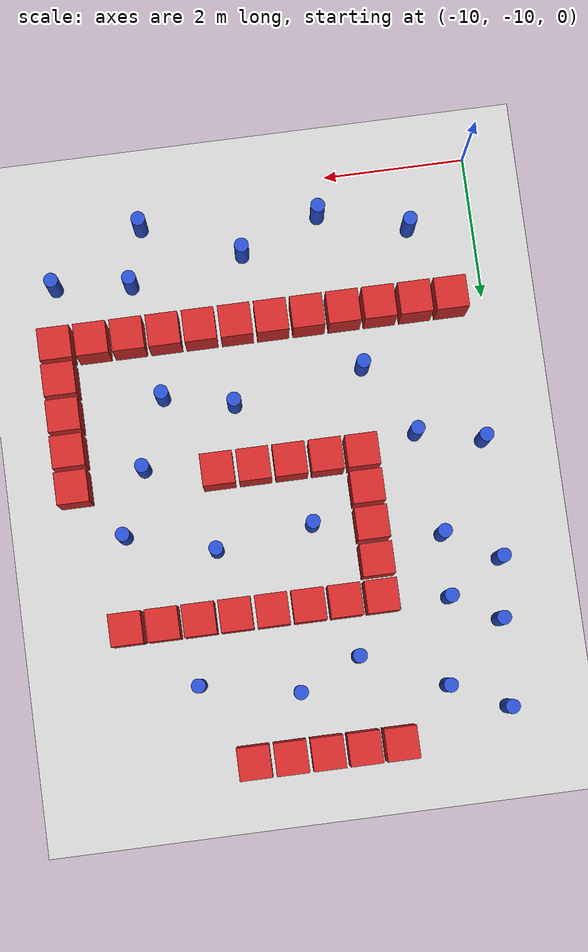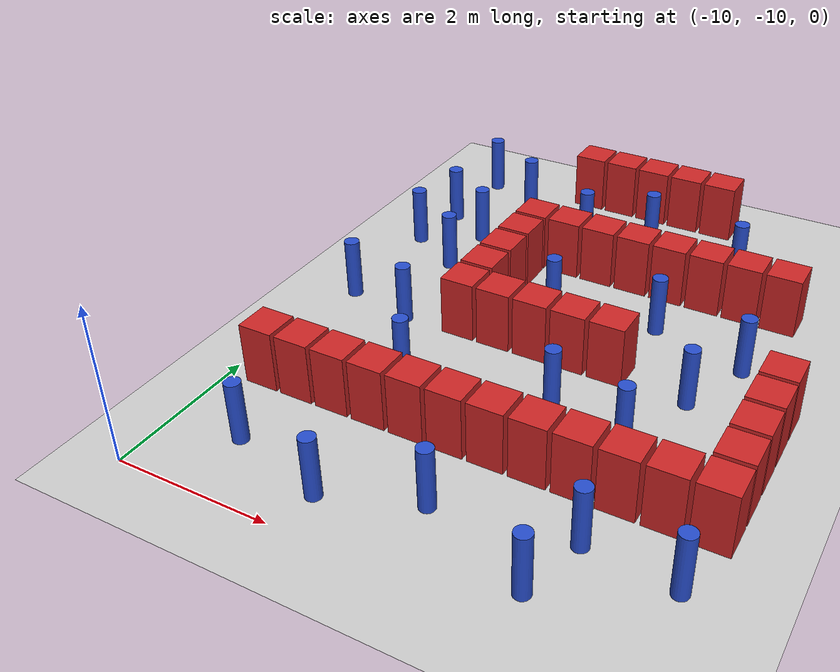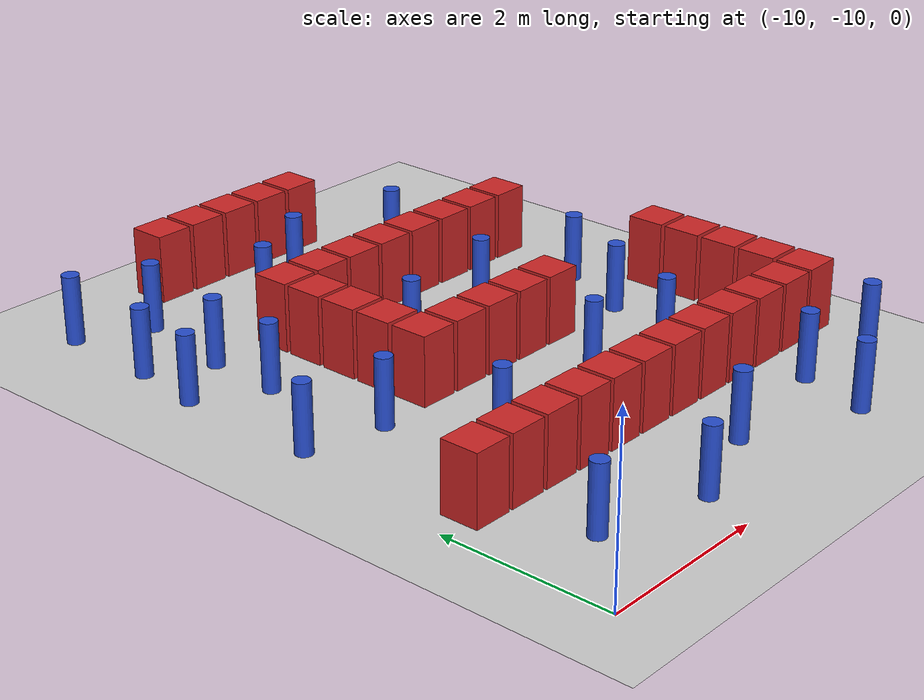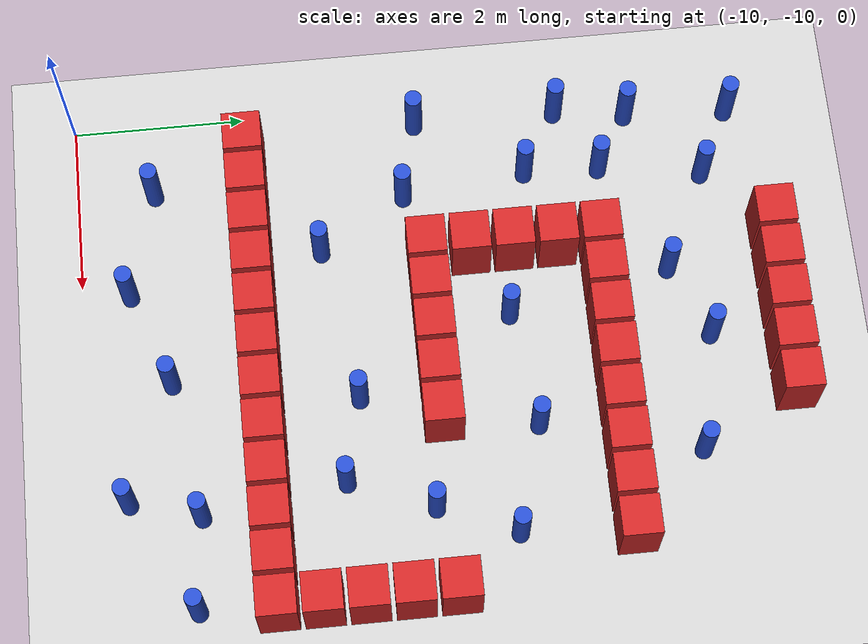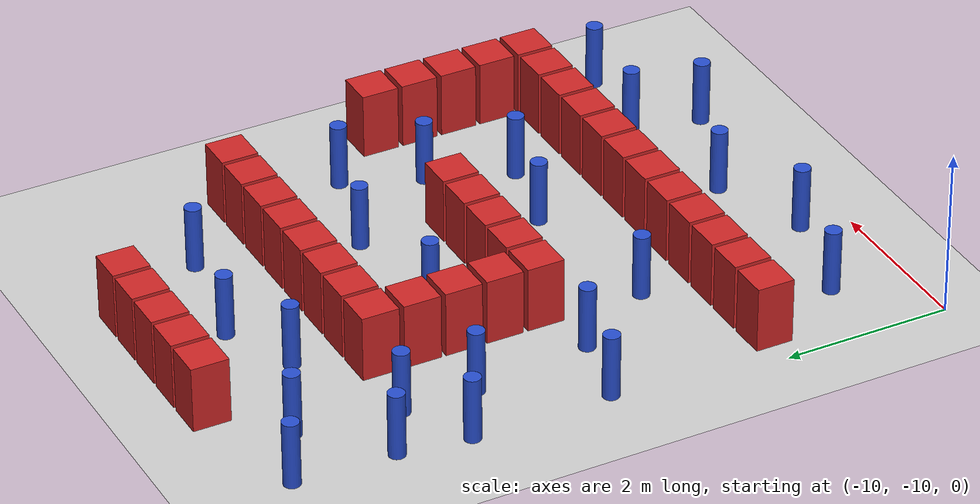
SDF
<sdf version="1.6">
 <world name="default">
  <model name="ground_plane">
   <static>1</static>
   <link name="link">
    <collision name="collision">
     <geometry><plane><normal>0 0 1</normal><size>100 100</size></plane></geometry>
     <surface><friction><ode><mu>100</mu><mu2>50</mu2></ode></friction></surface>
    </collision>
    <visual name="visual">
     <cast_shadows>0</cast_shadows>
     <geometry><plane><normal>0 0 1</normal><size>100 100</size></plane></geometry>
     <material>
      <script><uri>file://media/materials/scripts/gazebo.material</uri><name>Gazebo/Grey</name></script>
     </material>
    </visual>
   </link>
  </model>
  <model name="box_obstacle0">
   <static>0</static>
   <link name="box_obstacle">
    <pose>0 0 0.1 0 -0 0</pose>
    <inertial>
     <mass>100</mass>
     <inertia>
      <ixx>0.166667</ixx>
      <ixy>0</ixy>
      <ixz>0</ixz>
      <iyy>0.166667</iyy>
      <iyz>0</iyz>
      <izz>0.166667</izz>
     </inertia>
    </inertial>
    <collision name="collision"><geometry><box><size>0.45 0.45 0.8</size></box></geometry></collision>
    <visual name="visual">
     <geometry><box><size>0.45 0.45 0.8</size></box></geometry>
     <material>
      <script><name>Gazebo/Red</name><uri>file://media/materials/scripts/gazebo.material</uri></script>
     </material>
    </visual>
   </link>
   <pose>-9.49545 -7.98027 0.299997 -3e-06 5e-06 -4e-06</pose>
  </model>
  <model name="box_obstacle3">
   <static>0</static>
   <link name="box_obstacle">
    <pose>0 0 0.1 0 -0 0</pose>
    <inertial>
     <mass>100</mass>
     <inertia>
      <ixx>0.166667</ixx>
      <ixy>0</ixy>
      <ixz>0</ixz>
      <iyy>0.166667</iyy>
      <iyz>0</iyz>
      <izz>0.166667</izz>
     </inertia>
    </inertial>
    <collision name="collision"><geometry><box><size>0.45 0.45 0.8</size></box></geometry></collision>
    <visual name="visual">
     <geometry><box><size>0.45 0.45 0.8</size></box></geometry>
     <material>
      <script><name>Gazebo/Red</name><uri>file://media/materials/scripts/gazebo.material</uri></script>
     </material>
    </visual>
   </link>
   <pose>-8.99045 -7.98027 0.299997 -3e-06 5e-06 -4e-06</pose>
  </model>
  <model name="box_obstacle6">
   <static>0</static>
   <link name="box_obstacle">
    <pose>0 0 0.1 0 -0 0</pose>
    <inertial>
     <mass>100</mass>
     <inertia>
      <ixx>0.166667</ixx>
      <ixy>0</ixy>
      <ixz>0</ixz>
      <iyy>0.166667</iyy>
      <iyz>0</iyz>
      <izz>0.166667</izz>
     </inertia>
    </inertial>
    <collision name="collision"><geometry><box><size>0.45 0.45 0.8</size></box></geometry></collision>
    <visual name="visual">
     <geometry><box><size>0.45 0.45 0.8</size></box></geometry>
     <material>
      <script><name>Gazebo/Red</name><uri>file://media/materials/scripts/gazebo.material</uri></script>
     </material>
    </visual>
   </link>
   <pose>-8.48545 -7.98027 0.299997 -3e-06 5e-06 -4e-06</pose>
  </model>
  <model name="box_obstacle9">
   <static>0</static>
   <link name="box_obstacle">
    <pose>0 0 0.1 0 -0 0</pose>
    <inertial>
     <mass>100</mass>
     <inertia>
      <ixx>0.166667</ixx>
      <ixy>0</ixy>
      <ixz>0</ixz>
      <iyy>0.166667</iyy>
      <iyz>0</iyz>
      <izz>0.166667</izz>
     </inertia>
    </inertial>
    <collision name="collision"><geometry><box><size>0.45 0.45 0.8</size></box></geometry></collision>
    <visual name="visual">
     <geometry><box><size>0.45 0.45 0.8</size></box></geometry>
     <material>
      <script><name>Gazebo/Red</name><uri>file://media/materials/scripts/gazebo.material</uri></script>
     </material>
    </visual>
   </link>
   <pose>-7.98045 -7.98027 0.299997 -3e-06 5e-06 -4e-06</pose>
  </model>
  <model name="box_obstacle10">
   <static>0</static>
   <link name="box_obstacle">
    <pose>0 0 0.1 0 -0 0</pose>
    <inertial>
     <mass>100</mass>
     <inertia>
      <ixx>0.166667</ixx>
      <ixy>0</ixy>
      <ixz>0</ixz>
      <iyy>0.166667</iyy>
      <iyz>0</iyz>
      <izz>0.166667</izz>
     </inertia>
    </inertial>
    <collision name="collision"><geometry><box><size>0.45 0.45 0.8</size></box></geometry></collision>
    <visual name="visual">
     <geometry><box><size>0.45 0.45 0.8</size></box></geometry>
     <material>
      <script><name>Gazebo/Red</name><uri>file://media/materials/scripts/gazebo.material</uri></script>
     </material>
    </visual>
   </link>
   <pose>-7.98045 -5.96027 0.299997 -3e-06 5e-06 -4e-06</pose>
  </model>
  <model name="box_obstacle11">
   <static>0</static>
   <link name="box_obstacle">
    <pose>0 0 0.1 0 -0 0</pose>
    <inertial>
     <mass>100</mass>
     <inertia>
      <ixx>0.166667</ixx>
      <ixy>0</ixy>
      <ixz>0</ixz>
      <iyy>0.166667</iyy>
      <iyz>0</iyz>
      <izz>0.166667</izz>
     </inertia>
    </inertial>
    <collision name="collision"><geometry><box><size>0.45 0.45 0.8</size></box></geometry></collision>
    <visual name="visual">
     <geometry><box><size>0.45 0.45 0.8</size></box></geometry>
     <material>
      <script><name>Gazebo/Red</name><uri>file://media/materials/scripts/gazebo.material</uri></script>
     </material>
    </visual>
   </link>
   <pose>-7.98045 -5.45527 0.299997 -3e-06 5e-06 -4e-06</pose>
  </model>
  <model name="box_obstacle12">
   <static>0</static>
   <link name="box_obstacle">
    <pose>0 0 0.1 0 -0 0</pose>
    <inertial>
     <mass>100</mass>
     <inertia>
      <ixx>0.166667</ixx>
      <ixy>0</ixy>
      <ixz>0</ixz>
      <iyy>0.166667</iyy>
      <iyz>0</iyz>
      <izz>0.166667</izz>
     </inertia>
    </inertial>
    <collision name="collision"><geometry><box><size>0.45 0.45 0.8</size></box></geometry></collision>
    <visual name="visual">
     <geometry><box><size>0.45 0.45 0.8</size></box></geometry>
     <material>
      <script><name>Gazebo/Red</name><uri>file://media/materials/scripts/gazebo.material</uri></script>
     </material>
    </visual>
   </link>
   <pose>-7.98045 -4.95027 0.299997 -3e-06 5e-06 -4e-06</pose>
  </model>
  <model name="box_obstacle13">
   <static>0</static>
   <link name="box_obstacle">
    <pose>0 0 0.1 0 -0 0</pose>
    <inertial>
     <mass>100</mass>
     <inertia>
      <ixx>0.166667</ixx>
      <ixy>0</ixy>
      <ixz>0</ixz>
      <iyy>0.166667</iyy>
      <iyz>0</iyz>
      <izz>0.166667</izz>
     </inertia>
    </inertial>
    <collision name="collision"><geometry><box><size>0.45 0.45 0.8</size></box></geometry></collision>
    <visual name="visual">
     <geometry><box><size>0.45 0.45 0.8</size></box></geometry>
     <material>
      <script><name>Gazebo/Red</name><uri>file://media/materials/scripts/gazebo.material</uri></script>
     </material>
    </visual>
   </link>
   <pose>-7.98045 -4.44527 0.299997 -3e-06 5e-06 -4e-06</pose>
  </model>
  <model name="box_obstacle14">
   <static>0</static>
   <link name="box_obstacle">
    <pose>0 0 0.1 0 -0 0</pose>
    <inertial>
     <mass>100</mass>
     <inertia>
      <ixx>0.166667</ixx>
      <ixy>0</ixy>
      <ixz>0</ixz>
      <iyy>0.166667</iyy>
      <iyz>0</iyz>
      <izz>0.166667</izz>
     </inertia>
    </inertial>
    <collision name="collision"><geometry><box><size>0.45 0.45 0.8</size></box></geometry></collision>
    <visual name="visual">
     <geometry><box><size>0.45 0.45 0.8</size></box></geometry>
     <material>
      <script><name>Gazebo/Red</name><uri>file://media/materials/scripts/gazebo.material</uri></script>
     </material>
    </visual>
   </link>
   <pose>-7.98045 -3.94027 0.299997 -3e-06 5e-06 -4e-06</pose>
  </model>
  <model name="box_obstacle15">
   <static>0</static>
   <link name="box_obstacle">
    <pose>0 0 0.1 0 -0 0</pose>
    <inertial>
     <mass>100</mass>
     <inertia>
      <ixx>0.166667</ixx>
      <ixy>0</ixy>
      <ixz>0</ixz>
      <iyy>0.166667</iyy>
      <iyz>0</iyz>
      <izz>0.166667</izz>
     </inertia>
    </inertial>
    <collision name="collision"><geometry><box><size>0.45 0.45 0.8</size></box></geometry></collision>
    <visual name="visual">
     <geometry><box><size>0.45 0.45 0.8</size></box></geometry>
     <material>
      <script><name>Gazebo/Red</name><uri>file://media/materials/scripts/gazebo.material</uri></script>
     </material>
    </visual>
   </link>
   <pose>-7.98045 -1.92027 0.299997 -3e-06 5e-06 -4e-06</pose>
  </model>
  <model name="box_obstacle24">
   <static>0</static>
   <link name="box_obstacle">
    <pose>0 0 0.1 0 -0 0</pose>
    <inertial>
     <mass>100</mass>
     <inertia>
      <ixx>0.166667</ixx>
      <ixy>0</ixy>
      <ixz>0</ixz>
      <iyy>0.166667</iyy>
      <iyz>0</iyz>
      <izz>0.166667</izz>
     </inertia>
    </inertial>
    <collision name="collision"><geometry><box><size>0.45 0.45 0.8</size></box></geometry></collision>
    <visual name="visual">
     <geometry><box><size>0.45 0.45 0.8</size></box></geometry>
     <material>
      <script><name>Gazebo/Red</name><uri>file://media/materials/scripts/gazebo.material</uri></script>
     </material>
    </visual>
   </link>
   <pose>-7.47545 -7.98027 0.299997 -3e-06 5e-06 -4e-06</pose>
  </model>
  <model name="box_obstacle25">
   <static>0</static>
   <link name="box_obstacle">
    <pose>0 0 0.1 0 -0 0</pose>
    <inertial>
     <mass>100</mass>
     <inertia>
      <ixx>0.166667</ixx>
      <ixy>0</ixy>
      <ixz>0</ixz>
      <iyy>0.166667</iyy>
      <iyz>0</iyz>
      <izz>0.166667</izz>
     </inertia>
    </inertial>
    <collision name="collision"><geometry><box><size>0.45 0.45 0.8</size></box></geometry></collision>
    <visual name="visual">
     <geometry><box><size>0.45 0.45 0.8</size></box></geometry>
     <material>
      <script><name>Gazebo/Red</name><uri>file://media/materials/scripts/gazebo.material</uri></script>
     </material>
    </visual>
   </link>
   <pose>-7.47545 -5.96027 0.299997 -3e-06 5e-06 -4e-06</pose>
  </model>
  <model name="box_obstacle26">
   <static>0</static>
   <link name="box_obstacle">
    <pose>0 0 0.1 0 -0 0</pose>
    <inertial>
     <mass>100</mass>
     <inertia>
      <ixx>0.166667</ixx>
      <ixy>0</ixy>
      <ixz>0</ixz>
      <iyy>0.166667</iyy>
      <iyz>0</iyz>
      <izz>0.166667</izz>
     </inertia>
    </inertial>
    <collision name="collision"><geometry><box><size>0.45 0.45 0.8</size></box></geometry></collision>
    <visual name="visual">
     <geometry><box><size>0.45 0.45 0.8</size></box></geometry>
     <material>
      <script><name>Gazebo/Red</name><uri>file://media/materials/scripts/gazebo.material</uri></script>
     </material>
    </visual>
   </link>
   <pose>-7.47545 -3.94027 0.299997 -3e-06 5e-06 -4e-06</pose>
  </model>
  <model name="box_obstacle27">
   <static>0</static>
   <link name="box_obstacle">
    <pose>0 0 0.1 0 -0 0</pose>
    <inertial>
     <mass>100</mass>
     <inertia>
      <ixx>0.166667</ixx>
      <ixy>0</ixy>
      <ixz>0</ixz>
      <iyy>0.166667</iyy>
      <iyz>0</iyz>
      <izz>0.166667</izz>
     </inertia>
    </inertial>
    <collision name="collision"><geometry><box><size>0.45 0.45 0.8</size></box></geometry></collision>
    <visual name="visual">
     <geometry><box><size>0.45 0.45 0.8</size></box></geometry>
     <material>
      <script><name>Gazebo/Red</name><uri>file://media/materials/scripts/gazebo.material</uri></script>
     </material>
    </visual>
   </link>
   <pose>-7.47545 -1.92027 0.299997 -3e-06 5e-06 -4e-06</pose>
  </model>
  <model name="box_obstacle31">
   <static>0</static>
   <link name="box_obstacle">
    <pose>0 0 0.1 0 -0 0</pose>
    <inertial>
     <mass>100</mass>
     <inertia>
      <ixx>0.166667</ixx>
      <ixy>0</ixy>
      <ixz>0</ixz>
      <iyy>0.166667</iyy>
      <iyz>0</iyz>
      <izz>0.166667</izz>
     </inertia>
    </inertial>
    <collision name="collision"><geometry><box><size>0.45 0.45 0.8</size></box></geometry></collision>
    <visual name="visual">
     <geometry><box><size>0.45 0.45 0.8</size></box></geometry>
     <material>
      <script><name>Gazebo/Red</name><uri>file://media/materials/scripts/gazebo.material</uri></script>
     </material>
    </visual>
   </link>
   <pose>-6.97045 -7.98027 0.299997 -3e-06 5e-06 -4e-06</pose>
  </model>
  <model name="box_obstacle32">
   <static>0</static>
   <link name="box_obstacle">
    <pose>0 0 0.1 0 -0 0</pose>
    <inertial>
     <mass>100</mass>
     <inertia>
      <ixx>0.166667</ixx>
      <ixy>0</ixy>
      <ixz>0</ixz>
      <iyy>0.166667</iyy>
      <iyz>0</iyz>
      <izz>0.166667</izz>
     </inertia>
    </inertial>
    <collision name="collision"><geometry><box><size>0.45 0.45 0.8</size></box></geometry></collision>
    <visual name="visual">
     <geometry><box><size>0.45 0.45 0.8</size></box></geometry>
     <material>
      <script><name>Gazebo/Red</name><uri>file://media/materials/scripts/gazebo.material</uri></script>
     </material>
    </visual>
   </link>
   <pose>-6.97045 -5.96027 0.299997 -3e-06 5e-06 -4e-06</pose>
  </model>
  <model name="box_obstacle33">
   <static>0</static>
   <link name="box_obstacle">
    <pose>0 0 0.1 0 -0 0</pose>
    <inertial>
     <mass>100</mass>
     <inertia>
      <ixx>0.166667</ixx>
      <ixy>0</ixy>
      <ixz>0</ixz>
      <iyy>0.166667</iyy>
      <iyz>0</iyz>
      <izz>0.166667</izz>
     </inertia>
    </inertial>
    <collision name="collision"><geometry><box><size>0.45 0.45 0.8</size></box></geometry></collision>
    <visual name="visual">
     <geometry><box><size>0.45 0.45 0.8</size></box></geometry>
     <material>
      <script><name>Gazebo/Red</name><uri>file://media/materials/scripts/gazebo.material</uri></script>
     </material>
    </visual>
   </link>
   <pose>-6.97045 -3.94027 0.299997 -3e-06 5e-06 -4e-06</pose>
  </model>
  <model name="box_obstacle34">
   <static>0</static>
   <link name="box_obstacle">
    <pose>0 0 0.1 0 -0 0</pose>
    <inertial>
     <mass>100</mass>
     <inertia>
      <ixx>0.166667</ixx>
      <ixy>0</ixy>
      <ixz>0</ixz>
      <iyy>0.166667</iyy>
      <iyz>0</iyz>
      <izz>0.166667</izz>
     </inertia>
    </inertial>
    <collision name="collision"><geometry><box><size>0.45 0.45 0.8</size></box></geometry></collision>
    <visual name="visual">
     <geometry><box><size>0.45 0.45 0.8</size></box></geometry>
     <material>
      <script><name>Gazebo/Red</name><uri>file://media/materials/scripts/gazebo.material</uri></script>
     </material>
    </visual>
   </link>
   <pose>-6.97045 -1.92027 0.299997 -3e-06 5e-06 -4e-06</pose>
  </model>
  <model name="box_obstacle38">
   <static>0</static>
   <link name="box_obstacle">
    <pose>0 0 0.1 0 -0 0</pose>
    <inertial>
     <mass>100</mass>
     <inertia>
      <ixx>0.166667</ixx>
      <ixy>0</ixy>
      <ixz>0</ixz>
      <iyy>0.166667</iyy>
      <iyz>0</iyz>
      <izz>0.166667</izz>
     </inertia>
    </inertial>
    <collision name="collision"><geometry><box><size>0.45 0.45 0.8</size></box></geometry></collision>
    <visual name="visual">
     <geometry><box><size>0.45 0.45 0.8</size></box></geometry>
     <material>
      <script><name>Gazebo/Red</name><uri>file://media/materials/scripts/gazebo.material</uri></script>
     </material>
    </visual>
   </link>
   <pose>-6.46545 -7.98027 0.299997 -3e-06 5e-06 -4e-06</pose>
  </model>
  <model name="box_obstacle39">
   <static>0</static>
   <link name="box_obstacle">
    <pose>0 0 0.1 0 -0 0</pose>
    <inertial>
     <mass>100</mass>
     <inertia>
      <ixx>0.166667</ixx>
      <ixy>0</ixy>
      <ixz>0</ixz>
      <iyy>0.166667</iyy>
      <iyz>0</iyz>
      <izz>0.166667</izz>
     </inertia>
    </inertial>
    <collision name="collision"><geometry><box><size>0.45 0.45 0.8</size></box></geometry></collision>
    <visual name="visual">
     <geometry><box><size>0.45 0.45 0.8</size></box></geometry>
     <material>
      <script><name>Gazebo/Red</name><uri>file://media/materials/scripts/gazebo.material</uri></script>
     </material>
    </visual>
   </link>
   <pose>-6.46545 -5.96027 0.299997 -3e-06 5e-06 -4e-06</pose>
  </model>
  <model name="box_obstacle40">
   <static>0</static>
   <link name="box_obstacle">
    <pose>0 0 0.1 0 -0 0</pose>
    <inertial>
     <mass>100</mass>
     <inertia>
      <ixx>0.166667</ixx>
      <ixy>0</ixy>
      <ixz>0</ixz>
      <iyy>0.166667</iyy>
      <iyz>0</iyz>
      <izz>0.166667</izz>
     </inertia>
    </inertial>
    <collision name="collision"><geometry><box><size>0.45 0.45 0.8</size></box></geometry></collision>
    <visual name="visual">
     <geometry><box><size>0.45 0.45 0.8</size></box></geometry>
     <material>
      <script><name>Gazebo/Red</name><uri>file://media/materials/scripts/gazebo.material</uri></script>
     </material>
    </visual>
   </link>
   <pose>-6.46545 -3.94027 0.299997 -3e-06 5e-06 -4e-06</pose>
  </model>
  <model name="box_obstacle41">
   <static>0</static>
   <link name="box_obstacle">
    <pose>0 0 0.1 0 -0 0</pose>
    <inertial>
     <mass>100</mass>
     <inertia>
      <ixx>0.166667</ixx>
      <ixy>0</ixy>
      <ixz>0</ixz>
      <iyy>0.166667</iyy>
      <iyz>0</iyz>
      <izz>0.166667</izz>
     </inertia>
    </inertial>
    <collision name="collision"><geometry><box><size>0.45 0.45 0.8</size></box></geometry></collision>
    <visual name="visual">
     <geometry><box><size>0.45 0.45 0.8</size></box></geometry>
     <material>
      <script><name>Gazebo/Red</name><uri>file://media/materials/scripts/gazebo.material</uri></script>
     </material>
    </visual>
   </link>
   <pose>-6.46545 -1.92027 0.299997 -3e-06 5e-06 -4e-06</pose>
  </model>
  <model name="box_obstacle45">
   <static>0</static>
   <link name="box_obstacle">
    <pose>0 0 0.1 0 -0 0</pose>
    <inertial>
     <mass>100</mass>
     <inertia>
      <ixx>0.166667</ixx>
      <ixy>0</ixy>
      <ixz>0</ixz>
      <iyy>0.166667</iyy>
      <iyz>0</iyz>
      <izz>0.166667</izz>
     </inertia>
    </inertial>
    <collision name="collision"><geometry><box><size>0.45 0.45 0.8</size></box></geometry></collision>
    <visual name="visual">
     <geometry><box><size>0.45 0.45 0.8</size></box></geometry>
     <material>
      <script><name>Gazebo/Red</name><uri>file://media/materials/scripts/gazebo.material</uri></script>
     </material>
    </visual>
   </link>
   <pose>-5.96045 -7.98027 0.299997 -3e-06 5e-06 -4e-06</pose>
  </model>
  <model name="box_obstacle46">
   <static>0</static>
   <link name="box_obstacle">
    <pose>0 0 0.1 0 -0 0</pose>
    <inertial>
     <mass>100</mass>
     <inertia>
      <ixx>0.166667</ixx>
      <ixy>0</ixy>
      <ixz>0</ixz>
      <iyy>0.166667</iyy>
      <iyz>0</iyz>
      <izz>0.166667</izz>
     </inertia>
    </inertial>
    <collision name="collision"><geometry><box><size>0.45 0.45 0.8</size></box></geometry></collision>
    <visual name="visual">
     <geometry><box><size>0.45 0.45 0.8</size></box></geometry>
     <material>
      <script><name>Gazebo/Red</name><uri>file://media/materials/scripts/gazebo.material</uri></script>
     </material>
    </visual>
   </link>
   <pose>-5.96045 -5.96027 0.299997 -3e-06 5e-06 -4e-06</pose>
  </model>
  <model name="box_obstacle47">
   <static>0</static>
   <link name="box_obstacle">
    <pose>0 0 0.1 0 -0 0</pose>
    <inertial>
     <mass>100</mass>
     <inertia>
      <ixx>0.166667</ixx>
      <ixy>0</ixy>
      <ixz>0</ixz>
      <iyy>0.166667</iyy>
      <iyz>0</iyz>
      <izz>0.166667</izz>
     </inertia>
    </inertial>
    <collision name="collision"><geometry><box><size>0.45 0.45 0.8</size></box></geometry></collision>
    <visual name="visual">
     <geometry><box><size>0.45 0.45 0.8</size></box></geometry>
     <material>
      <script><name>Gazebo/Red</name><uri>file://media/materials/scripts/gazebo.material</uri></script>
     </material>
    </visual>
   </link>
   <pose>-5.96045 -3.94027 0.299997 -3e-06 5e-06 -4e-06</pose>
  </model>
  <model name="box_obstacle48">
   <static>0</static>
   <link name="box_obstacle">
    <pose>0 0 0.1 0 -0 0</pose>
    <inertial>
     <mass>100</mass>
     <inertia>
      <ixx>0.166667</ixx>
      <ixy>0</ixy>
      <ixz>0</ixz>
      <iyy>0.166667</iyy>
      <iyz>0</iyz>
      <izz>0.166667</izz>
     </inertia>
    </inertial>
    <collision name="collision"><geometry><box><size>0.45 0.45 0.8</size></box></geometry></collision>
    <visual name="visual">
     <geometry><box><size>0.45 0.45 0.8</size></box></geometry>
     <material>
      <script><name>Gazebo/Red</name><uri>file://media/materials/scripts/gazebo.material</uri></script>
     </material>
    </visual>
   </link>
   <pose>-5.96045 -1.92027 0.299997 -3e-06 5e-06 -4e-06</pose>
  </model>
  <model name="box_obstacle66">
   <static>0</static>
   <link name="box_obstacle">
    <pose>0 0 0.1 0 -0 0</pose>
    <inertial>
     <mass>100</mass>
     <inertia>
      <ixx>0.166667</ixx>
      <ixy>0</ixy>
      <ixz>0</ixz>
      <iyy>0.166667</iyy>
      <iyz>0</iyz>
      <izz>0.166667</izz>
     </inertia>
    </inertial>
    <collision name="collision"><geometry><box><size>0.45 0.45 0.8</size></box></geometry></collision>
    <visual name="visual">
     <geometry><box><size>0.45 0.45 0.8</size></box></geometry>
     <material>
      <script><name>Gazebo/Red</name><uri>file://media/materials/scripts/gazebo.material</uri></script>
     </material>
    </visual>
   </link>
   <pose>-5.45545 -7.98027 0.299997 -3e-06 5e-06 -4e-06</pose>
  </model>
  <model name="box_obstacle67">
   <static>0</static>
   <link name="box_obstacle">
    <pose>0 0 0.1 0 -0 0</pose>
    <inertial>
     <mass>100</mass>
     <inertia>
      <ixx>0.166667</ixx>
      <ixy>0</ixy>
      <ixz>0</ixz>
      <iyy>0.166667</iyy>
      <iyz>0</iyz>
      <izz>0.166667</izz>
     </inertia>
    </inertial>
    <collision name="collision"><geometry><box><size>0.45 0.45 0.8</size></box></geometry></collision>
    <visual name="visual">
     <geometry><box><size>0.45 0.45 0.8</size></box></geometry>
     <material>
      <script><name>Gazebo/Red</name><uri>file://media/materials/scripts/gazebo.material</uri></script>
     </material>
    </visual>
   </link>
   <pose>-5.45545 -3.94027 0.299997 -3e-06 5e-06 -4e-06</pose>
  </model>
  <model name="box_obstacle70">
   <static>0</static>
   <link name="box_obstacle">
    <pose>0 0 0.1 0 -0 0</pose>
    <inertial>
     <mass>100</mass>
     <inertia>
      <ixx>0.166667</ixx>
      <ixy>0</ixy>
      <ixz>0</ixz>
      <iyy>0.166667</iyy>
      <iyz>0</iyz>
      <izz>0.166667</izz>
     </inertia>
    </inertial>
    <collision name="collision"><geometry><box><size>0.45 0.45 0.8</size></box></geometry></collision>
    <visual name="visual">
     <geometry><box><size>0.45 0.45 0.8</size></box></geometry>
     <material>
      <script><name>Gazebo/Red</name><uri>file://media/materials/scripts/gazebo.material</uri></script>
     </material>
    </visual>
   </link>
   <pose>-4.95045 -7.98027 0.299997 -3e-06 5e-06 -4e-06</pose>
  </model>
  <model name="box_obstacle71">
   <static>0</static>
   <link name="box_obstacle">
    <pose>0 0 0.1 0 -0 0</pose>
    <inertial>
     <mass>100</mass>
     <inertia>
      <ixx>0.166667</ixx>
      <ixy>0</ixy>
      <ixz>0</ixz>
      <iyy>0.166667</iyy>
      <iyz>0</iyz>
      <izz>0.166667</izz>
     </inertia>
    </inertial>
    <collision name="collision"><geometry><box><size>0.45 0.45 0.8</size></box></geometry></collision>
    <visual name="visual">
     <geometry><box><size>0.45 0.45 0.8</size></box></geometry>
     <material>
      <script><name>Gazebo/Red</name><uri>file://media/materials/scripts/gazebo.material</uri></script>
     </material>
    </visual>
   </link>
   <pose>-4.95045 -3.94027 0.299997 -3e-06 5e-06 -4e-06</pose>
  </model>
  <model name="box_obstacle74">
   <static>0</static>
   <link name="box_obstacle">
    <pose>0 0 0.1 0 -0 0</pose>
    <inertial>
     <mass>100</mass>
     <inertia>
      <ixx>0.166667</ixx>
      <ixy>0</ixy>
      <ixz>0</ixz>
      <iyy>0.166667</iyy>
      <iyz>0</iyz>
      <izz>0.166667</izz>
     </inertia>
    </inertial>
    <collision name="collision"><geometry><box><size>0.45 0.45 0.8</size></box></geometry></collision>
    <visual name="visual">
     <geometry><box><size>0.45 0.45 0.8</size></box></geometry>
     <material>
      <script><name>Gazebo/Red</name><uri>file://media/materials/scripts/gazebo.material</uri></script>
     </material>
    </visual>
   </link>
   <pose>-4.44545 -7.98027 0.299997 -3e-06 5e-06 -4e-06</pose>
  </model>
  <model name="box_obstacle75">
   <static>0</static>
   <link name="box_obstacle">
    <pose>0 0 0.1 0 -0 0</pose>
    <inertial>
     <mass>100</mass>
     <inertia>
      <ixx>0.166667</ixx>
      <ixy>0</ixy>
      <ixz>0</ixz>
      <iyy>0.166667</iyy>
      <iyz>0</iyz>
      <izz>0.166667</izz>
     </inertia>
    </inertial>
    <collision name="collision"><geometry><box><size>0.45 0.45 0.8</size></box></geometry></collision>
    <visual name="visual">
     <geometry><box><size>0.45 0.45 0.8</size></box></geometry>
     <material>
      <script><name>Gazebo/Red</name><uri>file://media/materials/scripts/gazebo.material</uri></script>
     </material>
    </visual>
   </link>
   <pose>-4.44545 -3.94027 0.299997 -3e-06 5e-06 -4e-06</pose>
  </model>
  <model name="box_obstacle78">
   <static>0</static>
   <link name="box_obstacle">
    <pose>0 0 0.1 0 -0 0</pose>
    <inertial>
     <mass>100</mass>
     <inertia>
      <ixx>0.166667</ixx>
      <ixy>0</ixy>
      <ixz>0</ixz>
      <iyy>0.166667</iyy>
      <iyz>0</iyz>
      <izz>0.166667</izz>
     </inertia>
    </inertial>
    <collision name="collision"><geometry><box><size>0.45 0.45 0.8</size></box></geometry></collision>
    <visual name="visual">
     <geometry><box><size>0.45 0.45 0.8</size></box></geometry>
     <material>
      <script><name>Gazebo/Red</name><uri>file://media/materials/scripts/gazebo.material</uri></script>
     </material>
    </visual>
   </link>
   <pose>-3.94045 -7.98027 0.299997 -3e-06 5e-06 -4e-06</pose>
  </model>
  <model name="box_obstacle79">
   <static>0</static>
   <link name="box_obstacle">
    <pose>0 0 0.1 0 -0 0</pose>
    <inertial>
     <mass>100</mass>
     <inertia>
      <ixx>0.166667</ixx>
      <ixy>0</ixy>
      <ixz>0</ixz>
      <iyy>0.166667</iyy>
      <iyz>0</iyz>
      <izz>0.166667</izz>
     </inertia>
    </inertial>
    <collision name="collision"><geometry><box><size>0.45 0.45 0.8</size></box></geometry></collision>
    <visual name="visual">
     <geometry><box><size>0.45 0.45 0.8</size></box></geometry>
     <material>
      <script><name>Gazebo/Red</name><uri>file://media/materials/scripts/gazebo.material</uri></script>
     </material>
    </visual>
   </link>
   <pose>-3.94045 -7.47527 0.299997 -3e-06 5e-06 -4e-06</pose>
  </model>
  <model name="box_obstacle80">
   <static>0</static>
   <link name="box_obstacle">
    <pose>0 0 0.1 0 -0 0</pose>
    <inertial>
     <mass>100</mass>
     <inertia>
      <ixx>0.166667</ixx>
      <ixy>0</ixy>
      <ixz>0</ixz>
      <iyy>0.166667</iyy>
      <iyz>0</iyz>
      <izz>0.166667</izz>
     </inertia>
    </inertial>
    <collision name="collision"><geometry><box><size>0.45 0.45 0.8</size></box></geometry></collision>
    <visual name="visual">
     <geometry><box><size>0.45 0.45 0.8</size></box></geometry>
     <material>
      <script><name>Gazebo/Red</name><uri>file://media/materials/scripts/gazebo.material</uri></script>
     </material>
    </visual>
   </link>
   <pose>-3.94045 -6.97027 0.299997 -3e-06 5e-06 -4e-06</pose>
  </model>
  <model name="box_obstacle81">
   <static>0</static>
   <link name="box_obstacle">
    <pose>0 0 0.1 0 -0 0</pose>
    <inertial>
     <mass>100</mass>
     <inertia>
      <ixx>0.166667</ixx>
      <ixy>0</ixy>
      <ixz>0</ixz>
      <iyy>0.166667</iyy>
      <iyz>0</iyz>
      <izz>0.166667</izz>
     </inertia>
    </inertial>
    <collision name="collision"><geometry><box><size>0.45 0.45 0.8</size></box></geometry></collision>
    <visual name="visual">
     <geometry><box><size>0.45 0.45 0.8</size></box></geometry>
     <material>
      <script><name>Gazebo/Red</name><uri>file://media/materials/scripts/gazebo.material</uri></script>
     </material>
    </visual>
   </link>
   <pose>-3.94045 -6.46527 0.299997 -3e-06 5e-06 -4e-06</pose>
  </model>
  <model name="box_obstacle82">
   <static>0</static>
   <link name="box_obstacle">
    <pose>0 0 0.1 0 -0 0</pose>
    <inertial>
     <mass>100</mass>
     <inertia>
      <ixx>0.166667</ixx>
      <ixy>0</ixy>
      <ixz>0</ixz>
      <iyy>0.166667</iyy>
      <iyz>0</iyz>
      <izz>0.166667</izz>
     </inertia>
    </inertial>
    <collision name="collision"><geometry><box><size>0.45 0.45 0.8</size></box></geometry></collision>
    <visual name="visual">
     <geometry><box><size>0.45 0.45 0.8</size></box></geometry>
     <material>
      <script><name>Gazebo/Red</name><uri>file://media/materials/scripts/gazebo.material</uri></script>
     </material>
    </visual>
   </link>
   <pose>-3.94045 -5.96027 0.299997 -3e-06 5e-06 -4e-06</pose>
  </model>
  <model name="cylinder_obstacle5">
   <static>0</static>
   <link name="link">
    <pose>0 0 1 0 -0 0</pose>
    <inertial>
     <mass>100</mass>
     <inertia>
      <ixx>0.166667</ixx>
      <ixy>0</ixy>
      <ixz>0</ixz>
      <iyy>0.166667</iyy>
      <iyz>0</iyz>
      <izz>0.166667</izz>
     </inertia>
    </inertial>
    <collision name="collision">
     <geometry><cylinder><radius>0.1</radius><length>0.8</length></cylinder></geometry>
    </collision>
    <visual name="visual">
     <geometry><cylinder><radius>0.1</radius><length>0.8</length></cylinder></geometry>
     <material>
      <script><name>Gazebo/Blue</name><uri>file://media/materials/scripts/gazebo.material</uri></script>
     </material>
    </visual>
   </link>
   <pose>-5.07332 -8.76026 -0.600002 3e-06 1e-06 0.003885</pose>
  </model>
  <model name="cylinder_obstacle6">
   <static>0</static>
   <link name="link">
    <pose>0 0 1 0 -0 0</pose>
    <inertial>
     <mass>100</mass>
     <inertia>
      <ixx>0.166667</ixx>
      <ixy>0</ixy>
      <ixz>0</ixz>
      <iyy>0.166667</iyy>
      <iyz>0</iyz>
      <izz>0.166667</izz>
     </inertia>
    </inertial>
    <collision name="collision">
     <geometry><cylinder><radius>0.1</radius><length>0.8</length></cylinder></geometry>
    </collision>
    <visual name="visual">
     <geometry><cylinder><radius>0.1</radius><length>0.8</length></cylinder></geometry>
     <material>
      <script><name>Gazebo/Blue</name><uri>file://media/materials/scripts/gazebo.material</uri></script>
     </material>
    </visual>
   </link>
   <pose>-4.5604 -5.22389 -0.600002 3e-06 1e-06 0.003885</pose>
  </model>
  <model name="cylinder_obstacle8">
   <static>0</static>
   <link name="link">
    <pose>0 0 1 0 -0 0</pose>
    <inertial>
     <mass>100</mass>
     <inertia>
      <ixx>0.166667</ixx>
      <ixy>0</ixy>
      <ixz>0</ixz>
      <iyy>0.166667</iyy>
      <iyz>0</iyz>
      <izz>0.166667</izz>
     </inertia>
    </inertial>
    <collision name="collision">
     <geometry><cylinder><radius>0.1</radius><length>0.8</length></cylinder></geometry>
    </collision>
    <visual name="visual">
     <geometry><cylinder><radius>0.1</radius><length>0.8</length></cylinder></geometry>
     <material>
      <script><name>Gazebo/Blue</name><uri>file://media/materials/scripts/gazebo.material</uri></script>
     </material>
    </visual>
   </link>
   <pose>-5.33788 -3.0435 -0.600002 3e-06 1e-06 0.003885</pose>
  </model>
  <model name="cylinder_obstacle14">
   <static>0</static>
   <link name="link">
    <pose>0 0 1 0 -0 0</pose>
    <inertial>
     <mass>100</mass>
     <inertia>
      <ixx>0.166667</ixx>
      <ixy>0</ixy>
      <ixz>0</ixz>
      <iyy>0.166667</iyy>
      <iyz>0</iyz>
      <izz>0.166667</izz>
     </inertia>
    </inertial>
    <collision name="collision">
     <geometry><cylinder><radius>0.1</radius><length>0.8</length></cylinder></geometry>
    </collision>
    <visual name="visual">
     <geometry><cylinder><radius>0.1</radius><length>0.8</length></cylinder></geometry>
     <material>
      <script><name>Gazebo/Blue</name><uri>file://media/materials/scripts/gazebo.material</uri></script>
     </material>
    </visual>
   </link>
   <pose>-6.68631 -9.01299 -0.600002 3e-06 1e-06 0.003885</pose>
  </model>
  <model name="cylinder_obstacle19">
   <static>0</static>
   <link name="link">
    <pose>0 0 1 0 -0 0</pose>
    <inertial>
     <mass>100</mass>
     <inertia>
      <ixx>0.166667</ixx>
      <ixy>0</ixy>
      <ixz>0</ixz>
      <iyy>0.166667</iyy>
      <iyz>0</iyz>
      <izz>0.166667</izz>
     </inertia>
    </inertial>
    <collision name="collision">
     <geometry><cylinder><radius>0.1</radius><length>0.8</length></cylinder></geometry>
    </collision>
    <visual name="visual">
     <geometry><cylinder><radius>0.1</radius><length>0.8</length></cylinder></geometry>
     <material>
      <script><name>Gazebo/Blue</name><uri>file://media/materials/scripts/gazebo.material</uri></script>
     </material>
    </visual>
   </link>
   <pose>-9.70544 -5.95013 -0.600002 3e-06 1e-06 -0.001223</pose>
  </model>
  <model name="cylinder_obstacle22">
   <static>0</static>
   <link name="link">
    <pose>0 0 1 0 -0 0</pose>
    <inertial>
     <mass>100</mass>
     <inertia>
      <ixx>0.166667</ixx>
      <ixy>0</ixy>
      <ixz>0</ixz>
      <iyy>0.166667</iyy>
      <iyz>0</iyz>
      <izz>0.166667</izz>
     </inertia>
    </inertial>
    <collision name="collision">
     <geometry><cylinder><radius>0.1</radius><length>0.8</length></cylinder></geometry>
    </collision>
    <visual name="visual">
     <geometry><cylinder><radius>0.1</radius><length>0.8</length></cylinder></geometry>
     <material>
      <script><name>Gazebo/Blue</name><uri>file://media/materials/scripts/gazebo.material</uri></script>
     </material>
    </visual>
   </link>
   <pose>-8.95416 -4.70667 -0.600002 3e-06 1e-06 0.003885</pose>
  </model>
  <model name="cylinder_obstacle23">
   <static>0</static>
   <link name="link">
    <pose>0 0 1 0 -0 0</pose>
    <inertial>
     <mass>100</mass>
     <inertia>
      <ixx>0.166667</ixx>
      <ixy>0</ixy>
      <ixz>0</ixz>
      <iyy>0.166667</iyy>
      <iyz>0</iyz>
      <izz>0.166667</izz>
     </inertia>
    </inertial>
    <collision name="collision">
     <geometry><cylinder><radius>0.1</radius><length>0.8</length></cylinder></geometry>
    </collision>
    <visual name="visual">
     <geometry><cylinder><radius>0.1</radius><length>0.8</length></cylinder></geometry>
     <material>
      <script><name>Gazebo/Blue</name><uri>file://media/materials/scripts/gazebo.material</uri></script>
     </material>
    </visual>
   </link>
   <pose>-7.57281 -3.1666 -0.600002 3e-06 1e-06 0.003885</pose>
  </model>
  <model name="cylinder_obstacle25">
   <static>0</static>
   <link name="link">
    <pose>0 0 1 0 -0 0</pose>
    <inertial>
     <mass>100</mass>
     <inertia>
      <ixx>0.166667</ixx>
      <ixy>0</ixy>
      <ixz>0</ixz>
      <iyy>0.166667</iyy>
      <iyz>0</iyz>
      <izz>0.166667</izz>
     </inertia>
    </inertial>
    <collision name="collision">
     <geometry><cylinder><radius>0.1</radius><length>0.8</length></cylinder></geometry>
    </collision>
    <visual name="visual">
     <geometry><cylinder><radius>0.1</radius><length>0.8</length></cylinder></geometry>
     <material>
      <script><name>Gazebo/Blue</name><uri>file://media/materials/scripts/gazebo.material</uri></script>
     </material>
    </visual>
   </link>
   <pose>-8.77844 -6.16267 -0.600002 3e-06 1e-06 0.003885</pose>
  </model>
  <model name="cylinder_obstacle26">
   <static>0</static>
   <link name="link">
    <pose>0 0 1 0 -0 0</pose>
    <inertial>
     <mass>100</mass>
     <inertia>
      <ixx>0.166667</ixx>
      <ixy>0</ixy>
      <ixz>0</ixz>
      <iyy>0.166667</iyy>
      <iyz>0</iyz>
      <izz>0.166667</izz>
     </inertia>
    </inertial>
    <collision name="collision">
     <geometry><cylinder><radius>0.1</radius><length>0.8</length></cylinder></geometry>
    </collision>
    <visual name="visual">
     <geometry><cylinder><radius>0.1</radius><length>0.8</length></cylinder></geometry>
     <material>
      <script><name>Gazebo/Blue</name><uri>file://media/materials/scripts/gazebo.material</uri></script>
     </material>
    </visual>
   </link>
   <pose>-6.71338 -2.77669 -0.600002 3e-06 1e-06 0.003885</pose>
  </model>
  <model name="cylinder_obstacle31">
   <static>0</static>
   <link name="link">
    <pose>0 0 1 0 -0 0</pose>
    <inertial>
     <mass>100</mass>
     <inertia>
      <ixx>0.166667</ixx>
      <ixy>0</ixy>
      <ixz>0</ixz>
      <iyy>0.166667</iyy>
      <iyz>0</iyz>
      <izz>0.166667</izz>
     </inertia>
    </inertial>
    <collision name="collision">
     <geometry><cylinder><radius>0.1</radius><length>0.8</length></cylinder></geometry>
    </collision>
    <visual name="visual">
     <geometry><cylinder><radius>0.1</radius><length>0.8</length></cylinder></geometry>
     <material>
      <script><name>Gazebo/Blue</name><uri>file://media/materials/scripts/gazebo.material</uri></script>
     </material>
    </visual>
   </link>
   <pose>-9.58913 -3.42917 -0.600002 3e-06 1e-06 0.003885</pose>
  </model>
  <model name="cylinder_obstacle45">
   <static>0</static>
   <link name="link">
    <pose>0 0 1 0 -0 0</pose>
    <inertial>
     <mass>100</mass>
     <inertia>
      <ixx>0.166667</ixx>
      <ixy>0</ixy>
      <ixz>0</ixz>
      <iyy>0.166667</iyy>
      <iyz>0</iyz>
      <izz>0.166667</izz>
     </inertia>
    </inertial>
    <collision name="collision">
     <geometry><cylinder><radius>0.1</radius><length>0.8</length></cylinder></geometry>
    </collision>
    <visual name="visual">
     <geometry><cylinder><radius>0.1</radius><length>0.8</length></cylinder></geometry>
     <material>
      <script><name>Gazebo/Blue</name><uri>file://media/materials/scripts/gazebo.material</uri></script>
     </material>
    </visual>
   </link>
   <pose>-5.32365 -7.10901 -0.600002 3e-06 1e-06 0.003885</pose>
  </model>
  <model name="cylinder_obstacle51">
   <static>0</static>
   <link name="link">
    <pose>0 0 1 0 -0 0</pose>
    <inertial>
     <mass>100</mass>
     <inertia>
      <ixx>0.166667</ixx>
      <ixy>0</ixy>
      <ixz>0</ixz>
      <iyy>0.166667</iyy>
      <iyz>0</iyz>
      <izz>0.166667</izz>
     </inertia>
    </inertial>
    <collision name="collision">
     <geometry><cylinder><radius>0.1</radius><length>0.8</length></cylinder></geometry>
    </collision>
    <visual name="visual">
     <geometry><cylinder><radius>0.1</radius><length>0.8</length></cylinder></geometry>
     <material>
      <script><name>Gazebo/Blue</name><uri>file://media/materials/scripts/gazebo.material</uri></script>
     </material>
    </visual>
   </link>
   <pose>-9.07177 -9.08814 -0.600002 3e-06 1e-06 0.003885</pose>
  </model>
  <model name="cylinder_obstacle57">
   <static>0</static>
   <link name="link">
    <pose>0 0 1 0 -0 0</pose>
    <inertial>
     <mass>100</mass>
     <inertia>
      <ixx>0.166667</ixx>
      <ixy>0</ixy>
      <ixz>0</ixz>
      <iyy>0.166667</iyy>
      <iyz>0</iyz>
      <izz>0.166667</izz>
     </inertia>
    </inertial>
    <collision name="collision">
     <geometry><cylinder><radius>0.1</radius><length>0.8</length></cylinder></geometry>
    </collision>
    <visual name="visual">
     <geometry><cylinder><radius>0.1</radius><length>0.8</length></cylinder></geometry>
     <material>
      <script><name>Gazebo/Blue</name><uri>file://media/materials/scripts/gazebo.material</uri></script>
     </material>
    </visual>
   </link>
   <pose>-5.80694 -4.87341 -0.600002 3e-06 1e-06 0.003885</pose>
  </model>
  <model name="cylinder_obstacle62">
   <static>0</static>
   <link name="link">
    <pose>0 0 1 0 -0 0</pose>
    <inertial>
     <mass>100</mass>
     <inertia>
      <ixx>0.166667</ixx>
      <ixy>0</ixy>
      <ixz>0</ixz>
      <iyy>0.166667</iyy>
      <iyz>0</iyz>
      <izz>0.166667</izz>
     </inertia>
    </inertial>
    <collision name="collision">
     <geometry><cylinder><radius>0.1</radius><length>0.8</length></cylinder></geometry>
    </collision>
    <visual name="visual">
     <geometry><cylinder><radius>0.1</radius><length>0.8</length></cylinder></geometry>
     <material>
      <script><name>Gazebo/Blue</name><uri>file://media/materials/scripts/gazebo.material</uri></script>
     </material>
    </visual>
   </link>
   <pose>-7.8152 -9.43683 -0.600002 3e-06 1e-06 0.003885</pose>
  </model>
  <model name="cylinder_obstacle64">
   <static>0</static>
   <link name="link">
    <pose>0 0 1 0 -0 0</pose>
    <inertial>
     <mass>100</mass>
     <inertia>
      <ixx>0.166667</ixx>
      <ixy>0</ixy>
      <ixz>0</ixz>
      <iyy>0.166667</iyy>
      <iyz>0</iyz>
      <izz>0.166667</izz>
     </inertia>
    </inertial>
    <collision name="collision">
     <geometry><cylinder><radius>0.1</radius><length>0.8</length></cylinder></geometry>
    </collision>
    <visual name="visual">
     <geometry><cylinder><radius>0.1</radius><length>0.8</length></cylinder></geometry>
     <material>
      <script><name>Gazebo/Blue</name><uri>file://media/materials/scripts/gazebo.material</uri></script>
     </material>
    </visual>
   </link>
   <pose>-8.15946 -7.18173 -0.600002 3e-06 1e-06 0.003885</pose>
  </model>
  <model name="cylinder_obstacle67">
   <static>0</static>
   <link name="link">
    <pose>0 0 1 0 -0 0</pose>
    <inertial>
     <mass>100</mass>
     <inertia>
      <ixx>0.166667</ixx>
      <ixy>0</ixy>
      <ixz>0</ixz>
      <iyy>0.166667</iyy>
      <iyz>0</iyz>
      <izz>0.166667</izz>
     </inertia>
    </inertial>
    <collision name="collision">
     <geometry><cylinder><radius>0.1</radius><length>0.8</length></cylinder></geometry>
    </collision>
    <visual name="visual">
     <geometry><cylinder><radius>0.1</radius><length>0.8</length></cylinder></geometry>
     <material>
      <script><name>Gazebo/Blue</name><uri>file://media/materials/scripts/gazebo.material</uri></script>
     </material>
    </visual>
   </link>
   <pose>-6.31042 -6.88066 -0.600002 3e-06 1e-06 0.003885</pose>
  </model>
  <model name="cylinder_obstacle71">
   <static>0</static>
   <link name="link">
    <pose>0 0 1 0 -0 0</pose>
    <inertial>
     <mass>100</mass>
     <inertia>
      <ixx>0.166667</ixx>
      <ixy>0</ixy>
      <ixz>0</ixz>
      <iyy>0.166667</iyy>
      <iyz>0</iyz>
      <izz>0.166667</izz>
     </inertia>
    </inertial>
    <collision name="collision">
     <geometry><cylinder><radius>0.1</radius><length>0.8</length></cylinder></geometry>
    </collision>
    <visual name="visual">
     <geometry><cylinder><radius>0.1</radius><length>0.8</length></cylinder></geometry>
     <material>
      <script><name>Gazebo/Blue</name><uri>file://media/materials/scripts/gazebo.material</uri></script>
     </material>
    </visual>
   </link>
   <pose>-4.93595 -6.13013 -0.600002 3e-06 1e-06 0.003885</pose>
  </model>
  <model name="cylinder_obstacle72">
   <static>0</static>
   <link name="link">
    <pose>0 0 1 0 -0 0</pose>
    <inertial>
     <mass>100</mass>
     <inertia>
      <ixx>0.166667</ixx>
      <ixy>0</ixy>
      <ixz>0</ixz>
      <iyy>0.166667</iyy>
      <iyz>0</iyz>
      <izz>0.166667</izz>
     </inertia>
    </inertial>
    <collision name="collision">
     <geometry><cylinder><radius>0.1</radius><length>0.8</length></cylinder></geometry>
    </collision>
    <visual name="visual">
     <geometry><cylinder><radius>0.1</radius><length>0.8</length></cylinder></geometry>
     <material>
      <script><name>Gazebo/Blue</name><uri>file://media/materials/scripts/gazebo.material</uri></script>
     </material>
    </visual>
   </link>
   <pose>-7.17561 -5.06413 -0.600002 3e-06 1e-06 0.003885</pose>
  </model>
  <model name="cylinder_obstacle75">
   <static>0</static>
   <link name="link">
    <pose>0 0 1 0 -0 0</pose>
    <inertial>
     <mass>100</mass>
     <inertia>
      <ixx>0.166667</ixx>
      <ixy>0</ixy>
      <ixz>0</ixz>
      <iyy>0.166667</iyy>
      <iyz>0</iyz>
      <izz>0.166667</izz>
     </inertia>
    </inertial>
    <collision name="collision">
     <geometry><cylinder><radius>0.1</radius><length>0.8</length></cylinder></geometry>
    </collision>
    <visual name="visual">
     <geometry><cylinder><radius>0.1</radius><length>0.8</length></cylinder></geometry>
     <material>
      <script><name>Gazebo/Blue</name><uri>file://media/materials/scripts/gazebo.material</uri></script>
     </material>
    </visual>
   </link>
   <pose>-9.70541 -4.27104 -0.600008 3e-06 1e-06 -0.001233</pose>
  </model>
  <model name="cylinder_obstacle76">
   <static>0</static>
   <link name="link">
    <pose>0 0 1 0 -0 0</pose>
    <inertial>
     <mass>100</mass>
     <inertia>
      <ixx>0.166667</ixx>
      <ixy>0</ixy>
      <ixz>0</ixz>
      <iyy>0.166667</iyy>
      <iyz>0</iyz>
      <izz>0.166667</izz>
     </inertia>
    </inertial>
    <collision name="collision">
     <geometry><cylinder><radius>0.1</radius><length>0.8</length></cylinder></geometry>
    </collision>
    <visual name="visual">
     <geometry><cylinder><radius>0.1</radius><length>0.8</length></cylinder></geometry>
     <material>
      <script><name>Gazebo/Blue</name><uri>file://media/materials/scripts/gazebo.material</uri></script>
     </material>
    </visual>
   </link>
   <pose>-3.99685 -8.86037 -0.600002 3e-06 1e-06 0.003885</pose>
  </model>
  <model name="cylinder_obstacle89">
   <static>0</static>
   <link name="link">
    <pose>0 0 1 0 -0 0</pose>
    <inertial>
     <mass>100</mass>
     <inertia>
      <ixx>0.166667</ixx>
      <ixy>0</ixy>
      <ixz>0</ixz>
      <iyy>0.166667</iyy>
      <iyz>0</iyz>
      <izz>0.166667</izz>
     </inertia>
    </inertial>
    <collision name="collision">
     <geometry><cylinder><radius>0.1</radius><length>0.8</length></cylinder></geometry>
    </collision>
    <visual name="visual">
     <geometry><cylinder><radius>0.1</radius><length>0.8</length></cylinder></geometry>
     <material>
      <script><name>Gazebo/Blue</name><uri>file://media/materials/scripts/gazebo.material</uri></script>
     </material>
    </visual>
   </link>
   <pose>-5.30246 -9.57112 -0.600002 3e-06 1e-06 0.002244</pose>
  </model>
  <model name="cylinder_obstacle95">
   <static>0</static>
   <link name="link">
    <pose>0 0 1 0 -0 0</pose>
    <inertial>
     <mass>100</mass>
     <inertia>
      <ixx>0.166667</ixx>
      <ixy>0</ixy>
      <ixz>0</ixz>
      <iyy>0.166667</iyy>
      <iyz>0</iyz>
      <izz>0.166667</izz>
     </inertia>
    </inertial>
    <collision name="collision">
     <geometry><cylinder><radius>0.1</radius><length>0.8</length></cylinder></geometry>
    </collision>
    <visual name="visual">
     <geometry><cylinder><radius>0.1</radius><length>0.8</length></cylinder></geometry>
     <material>
      <script><name>Gazebo/Blue</name><uri>file://media/materials/scripts/gazebo.material</uri></script>
     </material>
    </visual>
   </link>
   <pose>-8.74417 -2.61566 -0.600002 3e-06 1e-06 0.003885</pose>
  </model>
  <model name="cylinder_obstacle97">
   <static>0</static>
   <link name="link">
    <pose>0 0 1 0 -0 0</pose>
    <inertial>
     <mass>100</mass>
     <inertia>
      <ixx>0.166667</ixx>
      <ixy>0</ixy>
      <ixz>0</ixz>
      <iyy>0.166667</iyy>
      <iyz>0</iyz>
      <izz>0.166667</izz>
     </inertia>
    </inertial>
    <collision name="collision">
     <geometry><cylinder><radius>0.1</radius><length>0.8</length></cylinder></geometry>
    </collision>
    <visual name="visual">
     <geometry><cylinder><radius>0.1</radius><length>0.8</length></cylinder></geometry>
     <material>
      <script><name>Gazebo/Blue</name><uri>file://media/materials/scripts/gazebo.material</uri></script>
     </material>
    </visual>
   </link>
   <pose>-8.92518 -3.82211 -0.600002 3e-06 1e-06 0.003885</pose>
  </model>
  <model name="cylinder_obstacle102">
   <static>0</static>
   <link name="link">
    <pose>0 0 1 0 -0 0</pose>
    <inertial>
     <mass>100</mass>
     <inertia>
      <ixx>0.166667</ixx>
      <ixy>0</ixy>
      <ixz>0</ixz>
      <iyy>0.166667</iyy>
      <iyz>0</iyz>
      <izz>0.166667</izz>
     </inertia>
    </inertial>
    <collision name="collision">
     <geometry><cylinder><radius>0.1</radius><length>0.8</length></cylinder></geometry>
    </collision>
    <visual name="visual">
     <geometry><cylinder><radius>0.1</radius><length>0.8</length></cylinder></geometry>
     <material>
      <script><name>Gazebo/Blue</name><uri>file://media/materials/scripts/gazebo.material</uri></script>
     </material>
    </visual>
   </link>
   <pose>-9.53571 -2.22211 -0.600002 3e-06 1e-06 0.003885</pose>
  </model>
 </world>
</sdf>
